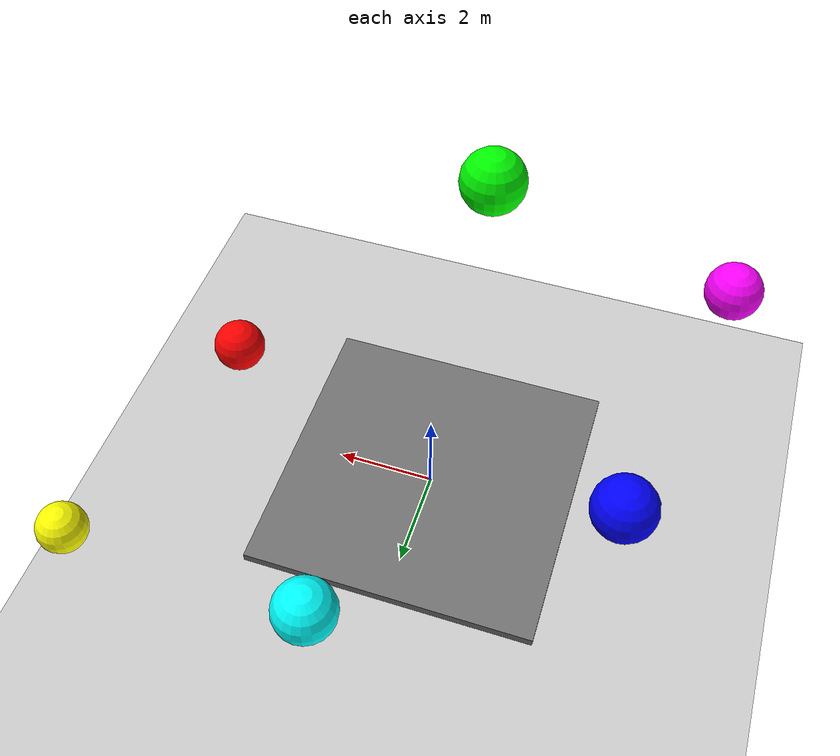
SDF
<?xml version="1.0" ?>
<sdf version="1.9">
  <world name="drone_world">

    <physics name="1ms" type="ignored">
      <max_step_size>0.001</max_step_size>
      <real_time_factor>1.0</real_time_factor>
      <real_time_update_rate>1000</real_time_update_rate>
    </physics>

    <include>
      <uri>https://fuel.gazebosim.org/1.0/OpenRobotics/models/Sun</uri>
    </include>

    <include>
      <uri>https://fuel.gazebosim.org/1.0/OpenRobotics/models/Ground Plane</uri>
    </include>

    <!-- القاعدة الرمادية -->
    <model name="base_platform">
      <static>true</static>
      <pose>0 0 0.1 0 0 0</pose>
      <link name="link">
        <collision name="collision">
          <geometry>
            <box>
              <size>6 6 0.2</size>
            </box>
          </geometry>
        </collision>
        <visual name="visual">
          <geometry>
            <box>
              <size>6 6 0.2</size>
            </box>
          </geometry>
          <material>
            <ambient>0.35 0.35 0.35 1</ambient>
            <diffuse>0.45 0.45 0.45 1</diffuse>
          </material>
        </visual>
      </link>
    </model>

    <!-- كرات ملونة في الجو -->
    <model name="air_sphere_1">
      <static>true</static>
      <pose>4 0 3 0 0 0</pose>
      <link name="link">
        <collision name="collision">
          <geometry>
            <sphere>
              <radius>0.5</radius>
            </sphere>
          </geometry>
        </collision>
        <visual name="visual">
          <geometry>
            <sphere>
              <radius>0.5</radius>
            </sphere>
          </geometry>
          <material>
            <ambient>1 0 0 1</ambient>
            <diffuse>1 0 0 1</diffuse>
          </material>
        </visual>
      </link>
    </model>

    <model name="air_sphere_2">
      <static>true</static>
      <pose>-4 2 4 0 0 0</pose>
      <link name="link">
        <collision name="collision">
          <geometry>
            <sphere>
              <radius>0.6</radius>
            </sphere>
          </geometry>
        </collision>
        <visual name="visual">
          <geometry>
            <sphere>
              <radius>0.6</radius>
            </sphere>
          </geometry>
          <material>
            <ambient>0 0 1 1</ambient>
            <diffuse>0 0 1 1</diffuse>
          </material>
        </visual>
      </link>
    </model>

    <model name="air_sphere_3">
      <static>true</static>
      <pose>0 -4 5 0 0 0</pose>
      <link name="link">
        <collision name="collision">
          <geometry>
            <sphere>
              <radius>0.7</radius>
            </sphere>
          </geometry>
        </collision>
        <visual name="visual">
          <geometry>
            <sphere>
              <radius>0.7</radius>
            </sphere>
          </geometry>
          <material>
            <ambient>0 1 0 1</ambient>
            <diffuse>0 1 0 1</diffuse>
          </material>
        </visual>
      </link>
    </model>

    <model name="air_sphere_4">
      <static>true</static>
      <pose>5 5 3.5 0 0 0</pose>
      <link name="link">
        <collision name="collision">
          <geometry>
            <sphere>
              <radius>0.45</radius>
            </sphere>
          </geometry>
        </collision>
        <visual name="visual">
          <geometry>
            <sphere>
              <radius>0.45</radius>
            </sphere>
          </geometry>
          <material>
            <ambient>1 1 0 1</ambient>
            <diffuse>1 1 0 1</diffuse>
          </material>
        </visual>
      </link>
    </model>

    <model name="air_sphere_5">
      <static>true</static>
      <pose>-5 -3 4.5 0 0 0</pose>
      <link name="link">
        <collision name="collision">
          <geometry>
            <sphere>
              <radius>0.55</radius>
            </sphere>
          </geometry>
        </collision>
        <visual name="visual">
          <geometry>
            <sphere>
              <radius>0.55</radius>
            </sphere>
          </geometry>
          <material>
            <ambient>1 0 1 1</ambient>
            <diffuse>1 0 1 1</diffuse>
          </material>
        </visual>
      </link>
    </model>

    <model name="air_sphere_6">
      <static>true</static>
      <pose>0 6 5.5 0 0 0</pose>
      <link name="link">
        <collision name="collision">
          <geometry>
            <sphere>
              <radius>0.5</radius>
            </sphere>
          </geometry>
        </collision>
        <visual name="visual">
          <geometry>
            <sphere>
              <radius>0.5</radius>
            </sphere>
          </geometry>
          <material>
            <ambient>0 1 1 1</ambient>
            <diffuse>0 1 1 1</diffuse>
          </material>
        </visual>
      </link>
    </model>

  </world>
</sdf>
